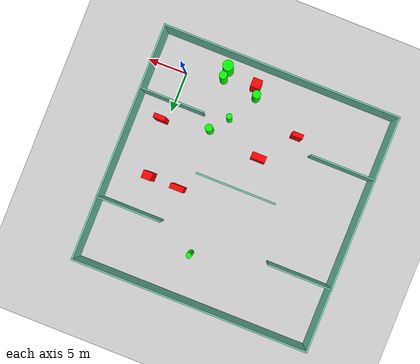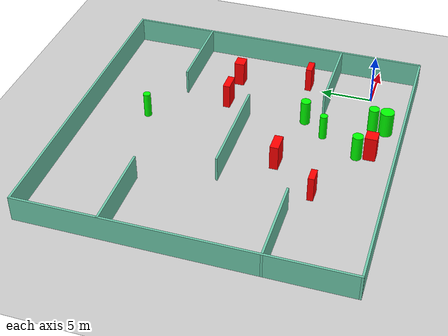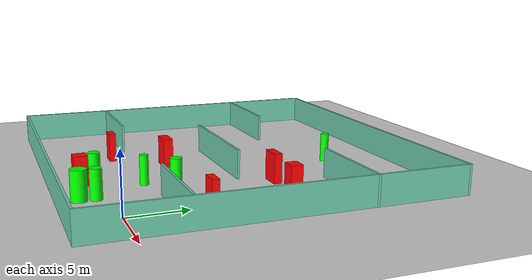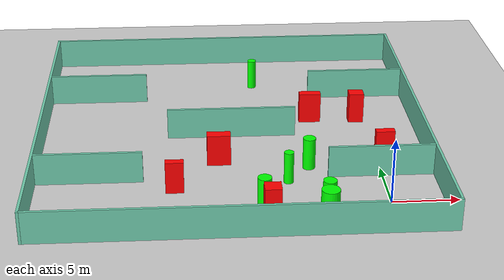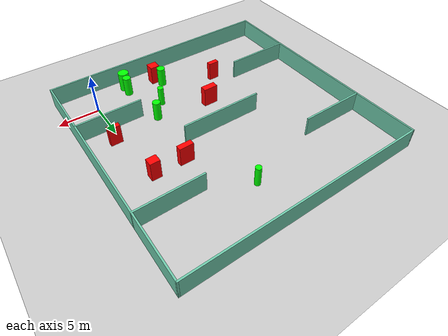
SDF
<sdf version="1.7">
 <world name="default">
  <light name="sun" type="directional">
   <pose>0 0 10 0 -0 0</pose>
   <diffuse>0.8 0.8 0.8 1</diffuse>
   <specular>0.2 0.2 0.2 1</specular>
   <attenuation>
    <range>1000</range>
    <constant>0.9</constant>
    <linear>0.01</linear>
    <quadratic>0.001</quadratic>
   </attenuation>
   <direction>-0.5 0.1 -0.9</direction>
   <spot><inner_angle>0</inner_angle><outer_angle>0</outer_angle><falloff>0</falloff></spot>
  </light>
  <model name="ground_plane">
   <static>1</static>
   <link name="link">
    <collision name="collision">
     <geometry><plane><normal>0 0 1</normal><size>100 100</size></plane></geometry>
     <surface>
      <contact><collide_bitmask>65535</collide_bitmask></contact>
      <friction><ode><mu>100</mu><mu2>50</mu2></ode></friction>
     </surface>
    </collision>
    <visual name="visual">
     <cast_shadows>0</cast_shadows>
     <geometry><plane><normal>0 0 1</normal><size>100 100</size></plane></geometry>
     <material>
      <script><uri>file://media/materials/scripts/gazebo.material</uri><name>Gazebo/Grey</name></script>
     </material>
    </visual>
   </link>
  </model>
  <gravity>0 0 -9.8</gravity>
  <magnetic_field>6e-06 2.3e-05 -4.2e-05</magnetic_field>
  <atmosphere type="adiabatic"/>
  <physics type="ode">
   <max_step_size>0.001</max_step_size>
   <real_time_factor>1</real_time_factor>
   <real_time_update_rate>1000</real_time_update_rate>
  </physics>
  <scene><ambient>0.4 0.4 0.4 1</ambient><background>0.7 0.7 0.7 1</background><shadows>1</shadows></scene>
  <spherical_coordinates>
   <surface_model>EARTH_WGS84</surface_model>
   <latitude_deg>0</latitude_deg>
   <longitude_deg>0</longitude_deg>
   <elevation>0</elevation>
   <heading_deg>0</heading_deg>
  </spherical_coordinates>
  <model name="my_base_walls">
   <link name="Wall_10">
    <collision name="Wall_10_Collision">
     <geometry><box><size>8.2 0.2 2.5</size></box></geometry>
     <pose>0 0 1.25 0 -0 0</pose>
    </collision>
    <visual name="Wall_10_Visual">
     <pose>0 0 1.25 0 -0 0</pose>
     <geometry><box><size>8.2 0.2 2.5</size></box></geometry>
     <material>
      <script><uri>file://media/materials/scripts/gazebo.material</uri><name>Gazebo/Grey</name></script>
      <ambient>0.435294 0.796078 0.67451 1</ambient>
     </material>
     <meta><layer>0</layer></meta>
    </visual>
    <pose>-11 -7 0 0 -0 0</pose>
   </link>
   <link name="Wall_12">
    <collision name="Wall_12_Collision">
     <geometry><box><size>8.2 0.2 2.5</size></box></geometry>
     <pose>0 0 1.25 0 -0 0</pose>
    </collision>
    <visual name="Wall_12_Visual">
     <pose>0 0 1.25 0 -0 0</pose>
     <geometry><box><size>8.2 0.2 2.5</size></box></geometry>
     <material>
      <script><uri>file://media/materials/scripts/gazebo.material</uri><name>Gazebo/Grey</name></script>
      <ambient>0.435294 0.796078 0.67451 1</ambient>
     </material>
     <meta><layer>0</layer></meta>
    </visual>
    <pose>-11 7 0 0 -0 0</pose>
   </link>
   <link name="Wall_14">
    <collision name="Wall_14_Collision">
     <geometry><box><size>8.2 0.2 2.5</size></box></geometry>
     <pose>0 0 1.25 0 -0 0</pose>
    </collision>
    <visual name="Wall_14_Visual">
     <pose>0 0 1.25 0 -0 0</pose>
     <geometry><box><size>8.2 0.2 2.5</size></box></geometry>
     <material>
      <script><uri>file://media/materials/scripts/gazebo.material</uri><name>Gazebo/Grey</name></script>
      <ambient>0.435294 0.796078 0.67451 1</ambient>
     </material>
     <meta><layer>0</layer></meta>
    </visual>
    <pose>11 7 0 0 -0 3.14159</pose>
   </link>
   <link name="Wall_16">
    <collision name="Wall_16_Collision">
     <geometry><box><size>10.2 0.2 2.5</size></box></geometry>
     <pose>0 0 1.25 0 -0 0</pose>
    </collision>
    <visual name="Wall_16_Visual">
     <pose>0 0 1.25 0 -0 0</pose>
     <geometry><box><size>10.2 0.2 2.5</size></box></geometry>
     <material>
      <script><uri>file://media/materials/scripts/gazebo.material</uri><name>Gazebo/Grey</name></script>
      <ambient>0.435294 0.796078 0.67451 1</ambient>
     </material>
     <meta><layer>0</layer></meta>
    </visual>
    <pose>0 0 0 0 -0 3.14159</pose>
   </link>
   <link name="Wall_2">
    <collision name="Wall_2_Collision">
     <geometry><box><size>30.2 0.2 2.5</size></box></geometry>
     <pose>0 0 1.25 0 -0 0</pose>
    </collision>
    <visual name="Wall_2_Visual">
     <pose>0 0 1.25 0 -0 0</pose>
     <geometry><box><size>30.2 0.2 2.5</size></box></geometry>
     <material>
      <script><uri>file://media/materials/scripts/gazebo.material</uri><name>Gazebo/Grey</name></script>
      <ambient>0.435294 0.796078 0.67451 1</ambient>
     </material>
     <meta><layer>0</layer></meta>
    </visual>
    <pose>0 -15 0 0 -0 3.14159</pose>
   </link>
   <link name="Wall_3">
    <collision name="Wall_3_Collision">
     <geometry><box><size>30.2 0.2 2.5</size></box></geometry>
     <pose>0 0 1.25 0 -0 0</pose>
    </collision>
    <visual name="Wall_3_Visual">
     <pose>0 0 1.25 0 -0 0</pose>
     <geometry><box><size>30.2 0.2 2.5</size></box></geometry>
     <material>
      <script><uri>file://media/materials/scripts/gazebo.material</uri><name>Gazebo/Grey</name></script>
      <ambient>0.435294 0.796078 0.67451 1</ambient>
     </material>
     <meta><layer>0</layer></meta>
    </visual>
    <pose>-15 0 0 0 -0 1.5708</pose>
   </link>
   <link name="Wall_4">
    <collision name="Wall_4_Collision">
     <geometry><box><size>30.2 0.2 2.5</size></box></geometry>
     <pose>0 0 1.25 0 -0 0</pose>
    </collision>
    <visual name="Wall_4_Visual">
     <pose>0 0 1.25 0 -0 0</pose>
     <geometry><box><size>30.2 0.2 2.5</size></box></geometry>
     <material>
      <script><uri>file://media/materials/scripts/gazebo.material</uri><name>Gazebo/Grey</name></script>
      <ambient>0.435294 0.796078 0.67451 1</ambient>
     </material>
     <meta><layer>0</layer></meta>
    </visual>
    <pose>0 15 0 0 -0 0</pose>
   </link>
   <link name="Wall_6">
    <collision name="Wall_6_Collision">
     <geometry><box><size>30.2 0.2 2.5</size></box></geometry>
     <pose>0 0 1.25 0 -0 0</pose>
    </collision>
    <visual name="Wall_6_Visual">
     <pose>0 0 1.25 0 -0 0</pose>
     <geometry><box><size>30.2 0.2 2.5</size></box></geometry>
     <material>
      <script><uri>file://media/materials/scripts/gazebo.material</uri><name>Gazebo/Grey</name></script>
      <ambient>0.435294 0.796078 0.67451 1</ambient>
     </material>
     <meta><layer>0</layer></meta>
    </visual>
    <pose>15 0 0 0 -0 1.5708</pose>
   </link>
   <link name="Wall_8">
    <collision name="Wall_8_Collision">
     <geometry><box><size>8.2 0.2 2.5</size></box></geometry>
     <pose>0 0 1.25 0 -0 0</pose>
    </collision>
    <visual name="Wall_8_Visual">
     <pose>0 0 1.25 0 -0 0</pose>
     <geometry><box><size>8.2 0.2 2.5</size></box></geometry>
     <material>
      <script><uri>file://media/materials/scripts/gazebo.material</uri><name>Gazebo/Grey</name></script>
      <ambient>0.435294 0.796078 0.67451 1</ambient>
     </material>
     <meta><layer>0</layer></meta>
    </visual>
    <pose>11 -7 0 0 -0 3.14159</pose>
   </link>
   <static>1</static>
   <pose>-11 11 0 0 -0 0</pose>
  </model>
  <model name="cylinder1">
   <static>1</static>
   <link name="link">
    <inertial>
     <mass>1</mass>
     <inertia><ixx>0.5</ixx><ixy>0</ixy><ixz>0</ixz><iyy>0.5</iyy><iyz>0</iyz><izz>1</izz></inertia>
    </inertial>
    <collision name="collision">
     <geometry><cylinder><radius>0.4952691328697361</radius><length>2.5</length></cylinder></geometry>
    </collision>
    <visual name="visual">
     <geometry><cylinder><radius>0.4952691328697361</radius><length>2.5</length></cylinder></geometry>
     <material>
      <ambient>0 1 0 1</ambient>
      <diffuse>0 1 0 1</diffuse>
      <specular>0.1 0.1 0.1 1</specular>
      <emissive>0 0 0 0</emissive>
     </material>
    </visual>
   </link>
   <pose>-4.655125882188592 -0.9828461267108901 1.25 0 0 0</pose>
  </model>
  <model name="cylinder2">
   <static>1</static>
   <link name="link">
    <inertial>
     <mass>1</mass>
     <inertia><ixx>0.5</ixx><ixy>0</ixy><ixz>0</ixz><iyy>0.5</iyy><iyz>0</iyz><izz>1</izz></inertia>
    </inertial>
    <collision name="collision">
     <geometry><cylinder><radius>0.47928331196859936</radius><length>2.5</length></cylinder></geometry>
    </collision>
    <visual name="visual">
     <geometry><cylinder><radius>0.47928331196859936</radius><length>2.5</length></cylinder></geometry>
     <material>
      <ambient>0 1 0 1</ambient>
      <diffuse>0 1 0 1</diffuse>
      <specular>0.1 0.1 0.1 1</specular>
      <emissive>0 0 0 0</emissive>
     </material>
    </visual>
   </link>
   <pose>-5.375117217346379 5.489943223850819 1.25 0 0 0</pose>
  </model>
  <model name="cylinder3">
   <static>1</static>
   <link name="link">
    <inertial>
     <mass>1</mass>
     <inertia><ixx>0.5</ixx><ixy>0</ixy><ixz>0</ixz><iyy>0.5</iyy><iyz>0</iyz><izz>1</izz></inertia>
    </inertial>
    <collision name="collision">
     <geometry><cylinder><radius>0.6669936440002532</radius><length>2.5</length></cylinder></geometry>
    </collision>
    <visual name="visual">
     <geometry><cylinder><radius>0.6669936440002532</radius><length>2.5</length></cylinder></geometry>
     <material>
      <ambient>0 1 0 1</ambient>
      <diffuse>0 1 0 1</diffuse>
      <specular>0.1 0.1 0.1 1</specular>
      <emissive>0 0 0 0</emissive>
     </material>
    </visual>
   </link>
   <pose>-4.767351895693331 -2.2494811724939914 1.25 0 0 0</pose>
  </model>
  <model name="cylinder4">
   <static>1</static>
   <link name="link">
    <inertial>
     <mass>1</mass>
     <inertia><ixx>0.5</ixx><ixy>0</ixy><ixz>0</ixz><iyy>0.5</iyy><iyz>0</iyz><izz>1</izz></inertia>
    </inertial>
    <collision name="collision">
     <geometry><cylinder><radius>0.3639042415500657</radius><length>2.5</length></cylinder></geometry>
    </collision>
    <visual name="visual">
     <geometry><cylinder><radius>0.3639042415500657</radius><length>2.5</length></cylinder></geometry>
     <material>
      <ambient>0 1 0 1</ambient>
      <diffuse>0 1 0 1</diffuse>
      <specular>0.1 0.1 0.1 1</specular>
      <emissive>0 0 0 0</emissive>
     </material>
    </visual>
   </link>
   <pose>-7.124997335863084 3.3288989608937998 1.25 0 0 0</pose>
  </model>
  <model name="cylinder5">
   <static>1</static>
   <link name="link">
    <inertial>
     <mass>1</mass>
     <inertia><ixx>0.5</ixx><ixy>0</ixy><ixz>0</ixz><iyy>0.5</iyy><iyz>0</iyz><izz>1</izz></inertia>
    </inertial>
    <collision name="collision">
     <geometry><cylinder><radius>0.5110655527983046</radius><length>2.5</length></cylinder></geometry>
    </collision>
    <visual name="visual">
     <geometry><cylinder><radius>0.5110655527983046</radius><length>2.5</length></cylinder></geometry>
     <material>
      <ambient>0 1 0 1</ambient>
      <diffuse>0 1 0 1</diffuse>
      <specular>0.1 0.1 0.1 1</specular>
      <emissive>0 0 0 0</emissive>
     </material>
    </visual>
   </link>
   <pose>-9.199080394572624 -0.31143221958476275 1.25 0 0 0</pose>
  </model>
  <model name="cylinder6">
   <static>1</static>
   <link name="link">
    <inertial>
     <mass>1</mass>
     <inertia><ixx>0.5</ixx><ixy>0</ixy><ixz>0</ixz><iyy>0.5</iyy><iyz>0</iyz><izz>1</izz></inertia>
    </inertial>
    <collision name="collision">
     <geometry><cylinder><radius>0.35634883214545465</radius><length>2.5</length></cylinder></geometry>
    </collision>
    <visual name="visual">
     <geometry><cylinder><radius>0.35634883214545465</radius><length>2.5</length></cylinder></geometry>
     <material>
      <ambient>0 1 0 1</ambient>
      <diffuse>0 1 0 1</diffuse>
      <specular>0.1 0.1 0.1 1</specular>
      <emissive>0 0 0 0</emissive>
     </material>
    </visual>
   </link>
   <pose>-8.767547654471706 20.45689251101484 1.25 0 0 0</pose>
  </model>
  <model name="box1">
   <static>1</static>
   <link name="link">
    <inertial>
     <mass>1</mass>
     <inertia><ixx>0.083</ixx><ixy>0</ixy><ixz>0</ixz><iyy>0.083</iyy><iyz>0</iyz><izz>0.083</izz></inertia>
    </inertial>
    <collision name="collision">
     <geometry><box><size>1.4525679948144656 0.5974081176368408 2.5</size></box></geometry>
    </collision>
    <visual name="visual">
     <geometry><box><size>1.4525679948144656 0.5974081176368408 2.5</size></box></geometry>
     <material>
      <ambient>1 0 0 1</ambient>
      <diffuse>1 0 0 1</diffuse>
      <specular>0.1 0.1 0.1 1</specular>
      <emissive>0 0 0 0</emissive>
     </material>
    </visual>
    <sensor name="my_contact" type="contact">
     <contact><collision>box_collision</collision><topic>__default_topic__</topic></contact>
    </sensor>
   </link>
   <pose>0.5534176451535728 6.462144122113948 1.25 0 0 0</pose>
  </model>
  <model name="box2">
   <static>1</static>
   <link name="link">
    <inertial>
     <mass>1</mass>
     <inertia><ixx>0.083</ixx><ixy>0</ixy><ixz>0</ixz><iyy>0.083</iyy><iyz>0</iyz><izz>0.083</izz></inertia>
    </inertial>
    <collision name="collision">
     <geometry><box><size>1.7435264251658102 0.6745008425835437 2.5</size></box></geometry>
    </collision>
    <visual name="visual">
     <geometry><box><size>1.7435264251658102 0.6745008425835437 2.5</size></box></geometry>
     <material>
      <ambient>1 0 0 1</ambient>
      <diffuse>1 0 0 1</diffuse>
      <specular>0.1 0.1 0.1 1</specular>
      <emissive>0 0 0 0</emissive>
     </material>
    </visual>
    <sensor name="my_contact" type="contact">
     <contact><collision>box_collision</collision><topic>__default_topic__</topic></contact>
    </sensor>
   </link>
   <pose>-4.448386658428497 13.506283968031461 1.25 0 0 0</pose>
  </model>
  <model name="box3">
   <static>1</static>
   <link name="link">
    <inertial>
     <mass>1</mass>
     <inertia><ixx>0.083</ixx><ixy>0</ixy><ixz>0</ixz><iyy>0.083</iyy><iyz>0</iyz><izz>0.083</izz></inertia>
    </inertial>
    <collision name="collision">
     <geometry><box><size>1.201780853175312 1.0027259391534242 2.5</size></box></geometry>
    </collision>
    <visual name="visual">
     <geometry><box><size>1.201780853175312 1.0027259391534242 2.5</size></box></geometry>
     <material>
      <ambient>1 0 0 1</ambient>
      <diffuse>1 0 0 1</diffuse>
      <specular>0.1 0.1 0.1 1</specular>
      <emissive>0 0 0 0</emissive>
     </material>
    </visual>
    <sensor name="my_contact" type="contact">
     <contact><collision>box_collision</collision><topic>__default_topic__</topic></contact>
    </sensor>
   </link>
   <pose>-0.6417184282361319 13.437578027568652 1.25 0 0 0</pose>
  </model>
  <model name="box4">
   <static>1</static>
   <link name="link">
    <inertial>
     <mass>1</mass>
     <inertia><ixx>0.083</ixx><ixy>0</ixy><ixz>0</ixz><iyy>0.083</iyy><iyz>0</iyz><izz>0.083</izz></inertia>
    </inertial>
    <collision name="collision">
     <geometry><box><size>1.2157259027497442 1.1407351497460263 2.5</size></box></geometry>
    </collision>
    <visual name="visual">
     <geometry><box><size>1.2157259027497442 1.1407351497460263 2.5</size></box></geometry>
     <material>
      <ambient>1 0 0 1</ambient>
      <diffuse>1 0 0 1</diffuse>
      <specular>0.1 0.1 0.1 1</specular>
      <emissive>0 0 0 0</emissive>
     </material>
    </visual>
    <sensor name="my_contact" type="contact">
     <contact><collision>box_collision</collision><topic>__default_topic__</topic></contact>
    </sensor>
   </link>
   <pose>-8.710210781917077 -1.5170961366555327 1.25 0 0 0</pose>
  </model>
  <model name="box5">
   <static>1</static>
   <link name="link">
    <inertial>
     <mass>1</mass>
     <inertia><ixx>0.083</ixx><ixy>0</ixy><ixz>0</ixz><iyy>0.083</iyy><iyz>0</iyz><izz>0.083</izz></inertia>
    </inertial>
    <collision name="collision">
     <geometry><box><size>1.8078271906913148 0.8142824784433809 2.5</size></box></geometry>
    </collision>
    <visual name="visual">
     <geometry><box><size>1.8078271906913148 0.8142824784433809 2.5</size></box></geometry>
     <material>
      <ambient>1 0 0 1</ambient>
      <diffuse>1 0 0 1</diffuse>
      <specular>0.1 0.1 0.1 1</specular>
      <emissive>0 0 0 0</emissive>
     </material>
    </visual>
    <sensor name="my_contact" type="contact">
     <contact><collision>box_collision</collision><topic>__default_topic__</topic></contact>
    </sensor>
   </link>
   <pose>-12.18381849232582 6.551369634832987 1.25 0 0 0</pose>
  </model>
  <model name="box6">
   <static>1</static>
   <link name="link">
    <inertial>
     <mass>1</mass>
     <inertia><ixx>0.083</ixx><ixy>0</ixy><ixz>0</ixz><iyy>0.083</iyy><iyz>0</iyz><izz>0.083</izz></inertia>
    </inertial>
    <collision name="collision">
     <geometry><box><size>1.3503469945848834 0.574544553057278 2.5</size></box></geometry>
    </collision>
    <visual name="visual">
     <geometry><box><size>1.3503469945848834 0.574544553057278 2.5</size></box></geometry>
     <material>
      <ambient>1 0 0 1</ambient>
      <diffuse>1 0 0 1</diffuse>
      <specular>0.1 0.1 0.1 1</specular>
      <emissive>0 0 0 0</emissive>
     </material>
    </visual>
    <sensor name="my_contact" type="contact">
     <contact><collision>box_collision</collision><topic>__default_topic__</topic></contact>
    </sensor>
   </link>
   <pose>-15.564652323392663 2.3908205604203356 1.25 0 0 0</pose>
  </model>
 </world>
</sdf>
